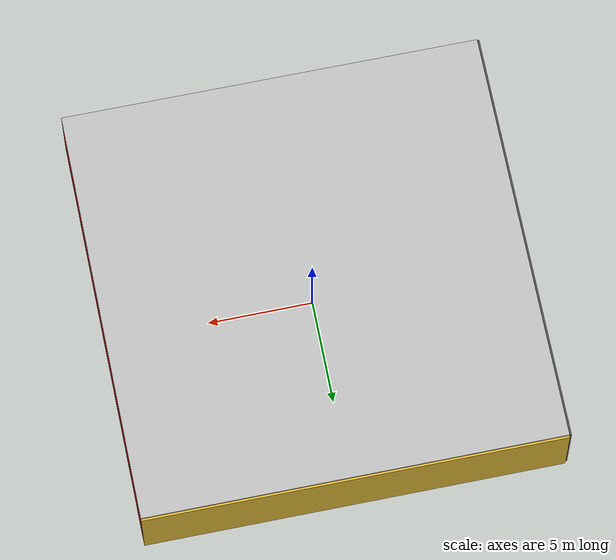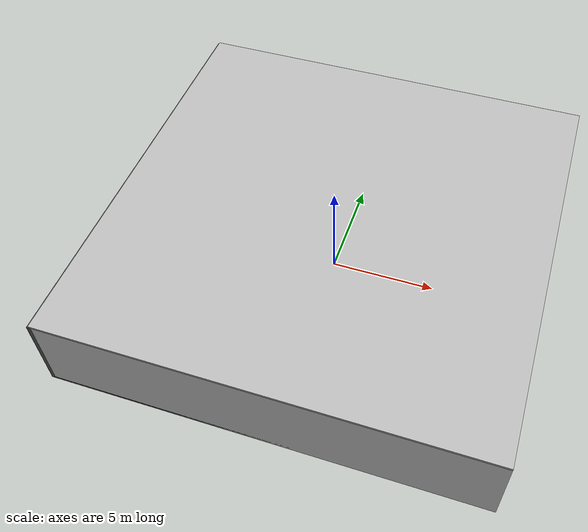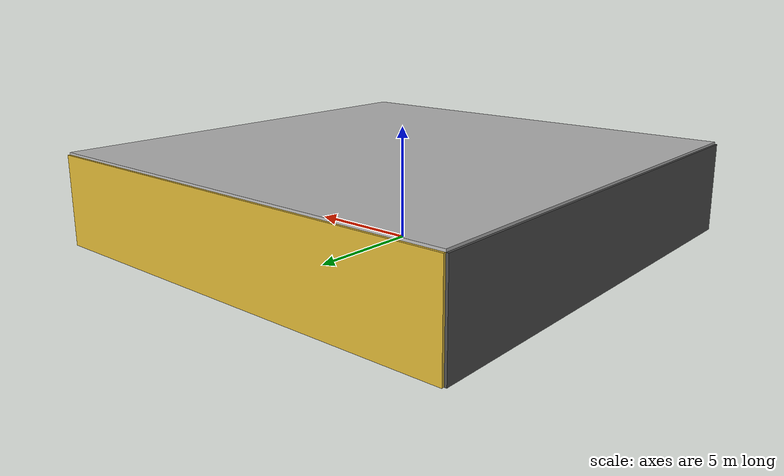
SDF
<sdf version="1.4">
 <world name="default">
  <physics type="ode">
   <max_step_size>0.001</max_step_size>
   <real_time_factor>1</real_time_factor>
   <real_time_update_rate>1000</real_time_update_rate>
   <gravity>0 0 -9.8</gravity>
  </physics>
  <scene><ambient>0.4 0.4 0.4 1</ambient><background>0.7 0.7 0.7 1</background><shadows>1</shadows></scene>
  <model name="Surrounding">
   <static>1</static>
   <link name="Ceiling">
    <collision name="Ceiling_Collision"><geometry><box><size>20 20 0.1</size></box></geometry></collision>
    <visual name="Ceiling_Visual">
     <geometry><box><size>20 20 0.1</size></box></geometry>
     <material>
      <script><uri>file://media/materials/scripts/gazebo.material</uri><name>Gazebo/LightOff</name></script>
     </material>
    </visual>
    <pose>0 0 4.05 0 0 0</pose>
   </link>
   <link name="Wall_South">
    <collision name="Wall_South_Collision">
     <geometry><box><size>20 0 4</size></box></geometry>
     <pose>0 0 2 0 -0 0</pose>
    </collision>
    <visual name="Wall_South_Visual">
     <pose>0 0 2 0 -0 0</pose>
     <geometry><box><size>20 0 4</size></box></geometry>
     <material>
      <script><uri>file://media/materials/scripts/gazebo.material</uri><name>Gazebo/LightOff</name></script>
     </material>
    </visual>
    <velocity_decay><linear>0</linear><angular>0</angular></velocity_decay>
    <pose>0 -10 0 0 -0 0</pose>
   </link>
   <link name="Wall_East">
    <collision name="Wall_21_Collision">
     <geometry><box><size>20 0 4</size></box></geometry>
     <pose>0 0 2 0 -0 0</pose>
    </collision>
    <visual name="Wall_21_Visual">
     <pose>0 0 2 0 -0 0</pose>
     <geometry><box><size>20 0 4</size></box></geometry>
     <material>
      <script><uri>file://media/materials/scripts/gazebo.material</uri><name>Gazebo/Red</name></script>
     </material>
    </visual>
    <velocity_decay><linear>0</linear><angular>0</angular></velocity_decay>
    <pose>10 0 0 0 -0 1.5708</pose>
   </link>
   <link name="Wall_North">
    <collision name="Wall_22_Collision">
     <geometry><box><size>20 0.2 4</size></box></geometry>
     <pose>0 0 2 0 -0 0</pose>
    </collision>
    <visual name="Wall_22_Visual">
     <pose>0 0 2 0 -0 0</pose>
     <geometry><box><size>20 0.2 4</size></box></geometry>
     <material>
      <script><uri>file://media/materials/scripts/gazebo.material</uri><name>Gazebo/Gold</name></script>
     </material>
    </visual>
    <velocity_decay><linear>0</linear><angular>0</angular></velocity_decay>
    <pose>0 10 0 0 -0 0</pose>
   </link>
   <link name="Wall_West">
    <collision name="Wall_23_Collision">
     <geometry><box><size>20 0.2 4</size></box></geometry>
     <pose>0 0 2 0 -0 0</pose>
    </collision>
    <visual name="Wall_23_Visual">
     <pose>0 0 2 0 -0 0</pose>
     <geometry><box><size>20 0.2 4</size></box></geometry>
     <material>
      <script><uri>file://media/materials/scripts/gazebo.material</uri><name>Gazebo/DarkGrey</name></script>
     </material>
    </visual>
    <velocity_decay><linear>0</linear><angular>0</angular></velocity_decay>
    <pose>-10 0 0 0 0 -1.5708</pose>
   </link>
   <link name="Ground_link">
    <collision name="collision">
     <pose>0 0 .05 0 -0 0</pose>
     <geometry><box><size>20 20 0.1</size></box></geometry>
    </collision>
    <visual name="visual">
     <pose>0 0 .05 0 -0 0</pose>
     <geometry><box><size>20 20 0.1</size></box></geometry>
     <material>
      <script><uri>file://media/materials/scripts/gazebo.material</uri><name>Gazebo/Road</name></script>
     </material>
    </visual>
   </link>
   <static>1</static>
  </model>
  <spherical_coordinates>
   <surface_model>EARTH_WGS84</surface_model>
   <latitude_deg>0</latitude_deg>
   <longitude_deg>0</longitude_deg>
   <elevation>0</elevation>
   <heading_deg>0</heading_deg>
  </spherical_coordinates>
  <light name="lightball_0" type="diffuse">
   <diffuse>0.8 0.8 0.8 1</diffuse>
   <specular>0.2 0.2 0.2 1</specular>
   <attenuation>
    <range>100</range>
    <constant>0.7</constant>
    <linear>0.01</linear>
    <quadratic>0.001</quadratic>
   </attenuation>
   <direction>-0.5 0.1 -0.9</direction>
   <pose>4.99949740833 0.494287625901 2.51495002025 0 0 0</pose>
  </light>
  <light name="lightball_1" type="diffuse">
   <diffuse>0.8 0.8 0.8 1</diffuse>
   <specular>0.2 0.2 0.2 1</specular>
   <attenuation>
    <range>100</range>
    <constant>0.7</constant>
    <linear>0.01</linear>
    <quadratic>0.001</quadratic>
   </attenuation>
   <direction>-0.5 0.1 -0.9</direction>
   <pose>8.85605444815 -1.90658769313 3.66667647405 0 0 0</pose>
  </light>
  <light name="lightball_2" type="diffuse">
   <diffuse>0.8 0.8 0.8 1</diffuse>
   <specular>0.2 0.2 0.2 1</specular>
   <attenuation>
    <range>100</range>
    <constant>0.7</constant>
    <linear>0.01</linear>
    <quadratic>0.001</quadratic>
   </attenuation>
   <direction>-0.5 0.1 -0.9</direction>
   <pose>1.79718264364 6.26502150158 2.42164330569 0 0 0</pose>
  </light>
  <light name="lightball_3" type="diffuse">
   <diffuse>0.8 0.8 0.8 1</diffuse>
   <specular>0.2 0.2 0.2 1</specular>
   <attenuation>
    <range>100</range>
    <constant>0.7</constant>
    <linear>0.01</linear>
    <quadratic>0.001</quadratic>
   </attenuation>
   <direction>-0.5 0.1 -0.9</direction>
   <pose>-3.43263993638 6.94341833817 1.82532335409 0 0 0</pose>
  </light>
  <light name="lightball_4" type="diffuse">
   <diffuse>0.8 0.8 0.8 1</diffuse>
   <specular>0.2 0.2 0.2 1</specular>
   <attenuation>
    <range>100</range>
    <constant>0.7</constant>
    <linear>0.01</linear>
    <quadratic>0.001</quadratic>
   </attenuation>
   <direction>-0.5 0.1 -0.9</direction>
   <pose>3.21741236833 8.22479461799 1.06339444195 0 0 0</pose>
  </light>
  <light name="lightball_5" type="diffuse">
   <diffuse>0.8 0.8 0.8 1</diffuse>
   <specular>0.2 0.2 0.2 1</specular>
   <attenuation>
    <range>100</range>
    <constant>0.7</constant>
    <linear>0.01</linear>
    <quadratic>0.001</quadratic>
   </attenuation>
   <direction>-0.5 0.1 -0.9</direction>
   <pose>1.63642237569 5.49259266734 0.849426468269 0 0 0</pose>
  </light>
  <light name="lightball_6" type="diffuse">
   <diffuse>0.8 0.8 0.8 1</diffuse>
   <specular>0.2 0.2 0.2 1</specular>
   <attenuation>
    <range>100</range>
    <constant>0.7</constant>
    <linear>0.01</linear>
    <quadratic>0.001</quadratic>
   </attenuation>
   <direction>-0.5 0.1 -0.9</direction>
   <pose>8.56584744107 -4.12105999682 3.21657102826 0 0 0</pose>
  </light>
  <include><uri>model://cabinet</uri><pose>-7.13455159317 -4.92580819832 0 0 0 2.7239269902</pose></include>
  <include>
   <uri>model://construction_cone</uri>
   <pose>-4.4362207988 4.28695848219 0 0 0 0.578288500966</pose>
  </include>
  <include>
   <uri>model://robocup_3Dsim_goal</uri>
   <pose>0.531075702292 7.2132001928 0 0 0 1.90521007536</pose>
  </include>
  <include>
   <uri>model://construction_cone</uri>
   <pose>5.60871967285 -5.16575814937 0 0 0 0.817912126449</pose>
  </include>
  <include><uri>model://table</uri><pose>3.94912817622 0.504524494019 0 0 0 3.09658505085</pose></include>
  <include>
   <uri>model://robocup_3Dsim_goal</uri>
   <pose>4.7980602552 5.56718279536 0 0 0 0.826079287117</pose>
  </include>
  <include><uri>model://table</uri><pose>3.39661976485 7.32664489335 0 0 0 1.27866691901</pose></include>
  <include><uri>model://cabinet</uri><pose>7.44852311812 6.99730601727 0 0 0 1.41057022968</pose></include>
 </world>
</sdf>

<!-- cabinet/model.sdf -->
<sdf version="1.5">
  <model name="cabinet">
    <static>true</static>
    <link name="cabinet_bottom_plate">
      <inertial>
        <pose>0 0 -1 0 0 0</pose>
        <inertia>
          <ixx>2.050000</ixx>
          <ixy>0</ixy>
          <ixz>0</ixz>
          <iyy>2.050000</iyy>
          <iyz>0</iyz>
          <izz>2.050000</izz>
        </inertia>
        <mass>25.000000</mass>
      </inertial>
      <collision name="cabinet_bottom_plate_geom">
        <pose>0 0 0.010000 0 0 0</pose>
        <geometry>
          <box>
            <size>0.450000 0.450000 0.020000</size>
          </box>
        </geometry>
      </collision>
      <visual name="cabinet_bottom_plate_geom_visual">
        <pose>0 0 0.010000 0 0 0</pose>
        <geometry>
          <box>
            <size>0.450000 0.450000 0.020000</size>
          </box>
        </geometry>
        <material>
          <script>
            <uri>model://media/materials/scripts/gazebo.material</uri>
            <name>Gazebo/Wood</name>
          </script>
        </material>
      </visual>
      <collision name="cabinet_bottom_plate_geom_cabinet_back_plate">
        <pose>0.235000 0 0.510000 0 0 0</pose>
        <geometry>
          <box>
            <size>0.020000 0.450000 1.020000</size>
          </box>
        </geometry>
      </collision>
      <visual name="cabinet_bottom_plate_geom_cabinet_back_plate_visual">
        <pose>0.235000 0 0.510000 0 0 0</pose>
        <geometry>
          <box>
            <size>0.020000 0.450000 1.020000</size>
          </box>
        </geometry>
        <material>
          <script>
            <uri>model://media/materials/scripts/gazebo.material</uri>
            <name>Gazebo/Wood</name>
          </script>
        </material>
      </visual>
      <collision name="cabinet_bottom_plate_geom_cabinet_left_plate">
        <pose>0 0.235000 0.510000 0 0 0</pose>
        <geometry>
          <box>
            <size>0.450000 0.020000 1.020000</size>
          </box>
        </geometry>
      </collision>
      <visual name="cabinet_bottom_plate_geom_cabinet_left_plate_visual">
        <pose>0 0.235000 0.510000 0 0 0</pose>
        <geometry>
          <box>
            <size>0.450000 0.020000 1.020000</size>
          </box>
        </geometry>
        <material>
          <script>
            <uri>model://media/materials/scripts/gazebo.material</uri>
            <name>Gazebo/Wood</name>
          </script>
        </material>
      </visual>
      <collision name="cabinet_bottom_plate_geom_cabinet_middle_plate">
        <pose>0 0 0.510000 0 0 0</pose>
        <geometry>
          <box>
            <size>0.450000 0.450000 0.020000</size>
          </box>
        </geometry>
      </collision>
      <visual name="cabinet_bottom_plate_geom_cabinet_middle_plate_visual">
        <pose>0 0 0.510000 0 0 0</pose>
        <geometry>
          <box>
            <size>0.450000 0.450000 0.020000</size>
          </box>
        </geometry>
        <material>
          <script>
            <uri>model://media/materials/scripts/gazebo.material</uri>
            <name>Gazebo/Wood</name>
          </script>
        </material>
      </visual>
      <collision name="cabinet_bottom_plate_geom_cabinet_right_plate">
        <pose>0 -0.235000 0.510000 0 0 0</pose>
        <geometry>
          <box>
            <size>0.450000 0.020000 1.020000</size>
          </box>
        </geometry>
      </collision>
      <visual name="cabinet_bottom_plate_geom_cabinet_right_plate_visual">
        <pose>0 -0.235000 0.510000 0 0 0</pose>
        <geometry>
          <box>
            <size>0.450000 0.020000 1.020000</size>
          </box>
        </geometry>
        <material>
          <script>
            <uri>model://media/materials/scripts/gazebo.material</uri>
            <name>Gazebo/Wood</name>
          </script>
        </material>
      </visual>
      <collision name="cabinet_bottom_plate_geom_cabinet_top_plate">
        <pose>0 0 1.010000 0 0 0</pose>
        <geometry>
          <box>
            <size>0.450000 0.450000 0.020000</size>
          </box>
        </geometry>
      </collision>
      <visual name="cabinet_bottom_plate_geom_cabinet_top_plate_visual">
        <pose>0 0 1.010000 0 0 0</pose>
        <geometry>
          <box>
            <size>0.450000 0.450000 0.020000</size>
          </box>
        </geometry>
        <material>
          <script>
            <uri>model://media/materials/scripts/gazebo.material</uri>
            <name>Gazebo/Wood</name>
          </script>
        </material>
      </visual>
    </link>
  </model>
</sdf>

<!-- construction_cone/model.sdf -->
<sdf version="1.5">
  <model name="Construction Cone">
    <link name="link">
      <collision name="collision">
        <geometry>
          <mesh>
            <scale>10 10 10</scale>
            <uri>file://isr-testbed/construction_cone/meshes/construction_cone.dae</uri>
          </mesh>
        </geometry>
      </collision>
      <visual name="visual">
        <geometry>
          <mesh>
            <scale>10 10 10</scale>
            <uri>file://isr-testbed/construction_cone/meshes/construction_cone.dae</uri>
          </mesh>
        </geometry>
      </visual>
    </link>
  </model>
</sdf>

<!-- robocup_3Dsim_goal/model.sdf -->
<sdf version="1.5">
  <model name="robocup_3d_goal">
    <static>true</static>
    <link name="left_post">
      <pose>0 1.05 0.45 0 0 0</pose>
      <collision name="collision">
        <geometry>
          <cylinder>
            <radius>0.05</radius>
            <length>0.9</length>
          </cylinder>
        </geometry>
      </collision>
      <visual name="visual">
        <geometry>
          <cylinder>
            <radius>0.05</radius>
            <length>0.9</length>
          </cylinder>
        </geometry>
        <material>
          <script>
            <uri>file://media/materials/scripts/gazebo.material</uri>
            <name>Gazebo/ZincYellow</name>
          </script>
        </material>
      </visual>
    </link>
    <link name="left_support_horiz_lower">
      <pose>0.30 1.05 0.01 0 0 0</pose>
      <collision name="collision">
        <geometry>
          <box>
            <size>0.50 0.02 0.02</size>
          </box>
        </geometry>
      </collision>
      <visual name="visual">
        <geometry>
          <box>
            <size>0.50 0.02 0.02</size>
          </box>
        </geometry>
        <material>
          <script>
            <uri>file://media/materials/scripts/gazebo.material</uri>
            <name>Gazebo/White</name>
          </script>
        </material>
      </visual>
    </link>
    <link name="left_support_horiz_upper">
      <pose>0.30 1.05 0.79 0 0 0</pose>
      <collision name="collision">
        <geometry>
          <box>
            <size>0.50 0.02 0.02</size>
          </box>
        </geometry>
      </collision>
      <visual name="visual">
        <geometry>
          <box>
            <size>0.50 0.02 0.02</size>
          </box>
        </geometry>
        <material>
          <script>
            <uri>file://media/materials/scripts/gazebo.material</uri>
            <name>Gazebo/White</name>
          </script>
        </material>
      </visual>
    </link>
    <link name="left_support_vertical">
      <pose>0.56 1.05 0.4 0 1.5708 0</pose>
      <collision name="collision">
        <geometry>
          <box>
            <size>0.80 0.02 0.02</size>
          </box>
        </geometry>
      </collision>
      <visual name="visual">
        <geometry>
          <box>
            <size>0.80 0.02 0.02</size>
          </box>
        </geometry>
        <material>
          <script>
            <uri>file://media/materials/scripts/gazebo.material</uri>
            <name>Gazebo/White</name>
          </script>
        </material>
      </visual>
    </link>
    <link name="right_support_horiz_lower">
      <pose>0.30 -1.05 0.01 0 0 0</pose>
      <collision name="collision">
        <geometry>
          <box>
            <size>0.50 0.02 0.02</size>
          </box>
        </geometry>
      </collision>
      <visual name="visual">
        <geometry>
          <box>
            <size>0.50 0.02 0.02</size>
          </box>
        </geometry>
        <material>
          <script>
            <uri>file://media/materials/scripts/gazebo.material</uri>
            <name>Gazebo/White</name>
          </script>
        </material>
      </visual>
    </link>
    <link name="right_support_horiz_upper">
      <pose>0.30 -1.05 0.79 0 0 0</pose>
      <collision name="collision">
        <geometry>
          <box>
            <size>0.50 0.02 0.02</size>
          </box>
        </geometry>
      </collision>
      <visual name="visual">
        <geometry>
          <box>
            <size>0.50 0.02 0.02</size>
          </box>
        </geometry>
        <material>
          <script>
            <uri>file://media/materials/scripts/gazebo.material</uri>
            <name>Gazebo/White</name>
          </script>
        </material>
      </visual>
    </link>
    <link name="right_support_vertical">
      <pose>0.56 -1.05 0.4 0 1.5708 0</pose>
      <collision name="collision">
        <geometry>
          <box>
            <size>0.80 0.02 0.02</size>
          </box>
        </geometry>
      </collision>
      <visual name="visual">
        <geometry>
          <box>
            <size>0.80 0.02 0.02</size>
          </box>
        </geometry>
        <material>
          <script>
            <uri>file://media/materials/scripts/gazebo.material</uri>
            <name>Gazebo/White</name>
          </script>
        </material>
      </visual>
    </link>
    <link name="center_support_horiz_lower">
      <pose>0.56 0 0.01 0 1.5708 0</pose>
      <collision name="collision">
        <geometry>
          <box>
            <size>0.02 2.08 0.02</size>
          </box>
        </geometry>
      </collision>
      <visual name="visual">
        <geometry>
          <box>
            <size>0.02 2.08 0.02</size>
          </box>
        </geometry>
        <material>
          <script>
            <uri>file://media/materials/scripts/gazebo.material</uri>
            <name>Gazebo/White</name>
          </script>
        </material>
      </visual>
    </link>
    <link name="center_support_horiz_upper">
      <pose>0.56 0 0.79 0 1.5708 0</pose>
      <collision name="collision">
        <geometry>
          <box>
            <size>0.02 2.08 0.02</size>
          </box>
        </geometry>
      </collision>
      <visual name="visual">
        <geometry>
          <box>
            <size>0.02 2.08 0.02</size>
          </box>
        </geometry>
        <material>
          <script>
            <uri>file://media/materials/scripts/gazebo.material</uri>
            <name>Gazebo/White</name>
          </script>
        </material>
      </visual>
    </link>
    <link name="right_post">
      <pose>0 -1.05 0.45 0 0 0</pose>
      <collision name="collision">
        <geometry>
          <cylinder>
            <radius>0.05</radius>
            <length>0.9</length>
          </cylinder>
        </geometry>
      </collision>
      <visual name="visual">
        <geometry>
          <cylinder>
            <radius>0.05</radius>
            <length>0.9</length>
          </cylinder>
        </geometry>
        <material>
          <script>
            <uri>file://media/materials/scripts/gazebo.material</uri>
            <name>Gazebo/ZincYellow</name>
          </script>
        </material>
      </visual>
    </link>
    <link name="crossbar">
      <pose>0 0 0.85 1.57 1.57 0</pose>
      <collision name="collision">
        <geometry>
          <cylinder>
            <radius>0.05</radius>
            <length>2.0</length>
          </cylinder>
        </geometry>
      </collision>
      <visual name="visual">
        <geometry>
          <cylinder>
            <radius>0.05</radius>
            <length>2.0</length>
          </cylinder>
        </geometry>
        <material>
          <script>
            <uri>file://media/materials/scripts/gazebo.material</uri>
            <name>Gazebo/ZincYellow</name>
          </script>
        </material>
      </visual>
    </link>
    <link name="center_net">
      <pose>0.56 0 0.40 0 0 0</pose>
      <collision name="collision">
        <geometry>
          <box>
            <size>0.01 2.1 0.80</size>
          </box>
        </geometry>
      </collision>
      <visual name="visual">
        <geometry>
          <box>
            <size>0.01 2.1 0.80</size>
          </box>
        </geometry>
        <material>
          <script>
            <uri>model://../model_source/models/robocup09_spl_field/materials/scripts/</uri>
            <uri>model://../model_source/models/robocup09_spl_field/materials/textures/</uri>
            <name>RoboCup/Net</name>
          </script>
        </material>
      </visual>
    </link>
    <link name="left_net">
      <pose>0.30 1.05 0.40 0 0 0</pose>
      <collision name="collision">
        <geometry>
          <box>
            <size>0.50 0.01 0.76</size>
          </box>
        </geometry>
      </collision>
      <visual name="visual">
        <geometry>
          <box>
            <size>0.50 0.01 0.76</size>
          </box>
        </geometry>
        <material>
          <script>
            <uri>model://../model_source/models/robocup09_spl_field/materials/scripts/</uri>
            <uri>model://../model_source/models/robocup09_spl_field/materials/textures/</uri>
            <name>RoboCup/Net</name>
          </script>
        </material>
      </visual>
    </link>
    <link name="right_net">
      <pose>0.30 -1.05 0.40 0 0 0</pose>
      <collision name="collision">
        <geometry>
          <box>
            <size>0.50 0.01 0.76</size>
          </box>
        </geometry>
      </collision>
      <visual name="visual">
        <geometry>
          <box>
            <size>0.50 0.01 0.76</size>
          </box>
        </geometry>
        <material>
          <script>
            <uri>model://../model_source/models/robocup09_spl_field/materials/scripts/</uri>
            <uri>model://../model_source/models/robocup09_spl_field/materials/textures/</uri>
            <name>RoboCup/Net</name>
          </script>
        </material>
      </visual>
    </link>
  </model>
</sdf>

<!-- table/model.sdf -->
<sdf version="1.5">
  <model name="table">
    <static>true</static>
    <link name="link">
      <collision name="surface">
        <pose>0 0 1.0 0 0 0</pose>
        <geometry>
          <box>
            <size>1.5 0.8 0.03</size>
          </box>
        </geometry>
        <surface>
          <friction>
            <ode>
              <mu>0.6</mu>
              <mu2>0.6</mu2>
            </ode>
          </friction>
        </surface>
      </collision>
      <visual name="visual1">
        <pose>0 0 1.0 0 0 0</pose>
        <geometry>
          <box>
            <size>1.5 0.8 0.03</size>
          </box>
        </geometry>
        <material>
          <script>
            <uri>model://media/materials/scripts/gazebo.material</uri>
            <name>Gazebo/Wood</name>
          </script>
        </material>
      </visual>
      <collision name="front_left_leg">
        <pose>0.68 0.38 0.5 0 0 0</pose>
        <geometry>
          <cylinder>
            <radius>0.02</radius>
            <length>1.0</length>
          </cylinder>
        </geometry>
      </collision>
      <visual name="front_left_leg">
        <pose>0.68 0.38 0.5 0 0 0</pose>
        <geometry>
          <cylinder>
            <radius>0.02</radius>
            <length>1.0</length>
          </cylinder>
        </geometry>
        <material>
          <script>
            <uri>model://media/materials/scripts/gazebo.material</uri>
            <name>Gazebo/Grey</name>
          </script>
        </material>
      </visual>
      <collision name="front_right_leg">
        <pose>0.68 -0.38 0.5 0 0 0</pose>
        <geometry>
          <cylinder>
            <radius>0.02</radius>
            <length>1.0</length>
          </cylinder>
        </geometry>
      </collision>
      <visual name="front_right_leg">
        <pose>0.68 -0.38 0.5 0 0 0</pose>
        <geometry>
          <cylinder>
            <radius>0.02</radius>
            <length>1.0</length>
          </cylinder>
        </geometry>
        <material>
          <script>
            <uri>model://media/materials/scripts/gazebo.material</uri>
            <name>Gazebo/Grey</name>
          </script>
        </material>
      </visual>
      <collision name="back_right_leg">
        <pose>-0.68 -0.38 0.5 0 0 0</pose>
        <geometry>
          <cylinder>
            <radius>0.02</radius>
            <length>1.0</length>
          </cylinder>
        </geometry>
      </collision>
      <visual name="back_right_leg">
        <pose>-0.68 -0.38 0.5 0 0 0</pose>
        <geometry>
          <cylinder>
            <radius>0.02</radius>
            <length>1.0</length>
          </cylinder>
        </geometry>
        <material>
          <script>
            <uri>model://media/materials/scripts/gazebo.material</uri>
            <name>Gazebo/Grey</name>
          </script>
        </material>
      </visual>
      <collision name="back_left_leg">
        <pose>-0.68 0.38 0.5 0 0 0</pose>
        <geometry>
          <cylinder>
            <radius>0.02</radius>
            <length>1.0</length>
          </cylinder>
        </geometry>
      </collision>
      <visual name="back_left_leg">
        <pose>-0.68 0.38 0.5 0 0 0</pose>
        <geometry>
          <cylinder>
            <radius>0.02</radius>
            <length>1.0</length>
          </cylinder>
        </geometry>
        <material>
          <script>
            <uri>model://media/materials/scripts/gazebo.material</uri>
            <name>Gazebo/Grey</name>
          </script>
        </material>
      </visual>
    </link>
  </model>
</sdf>
